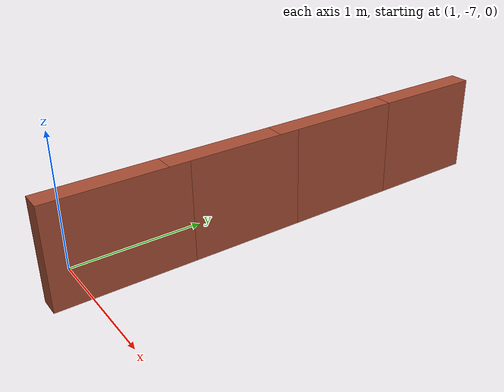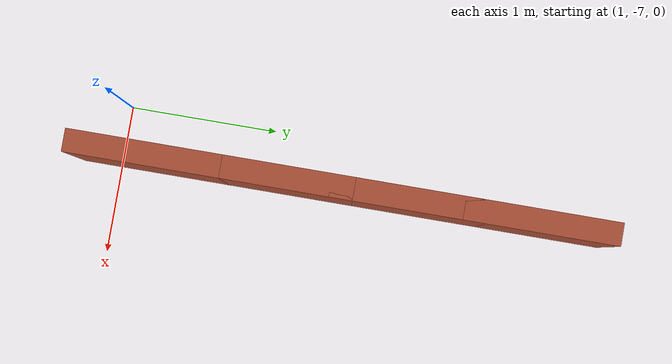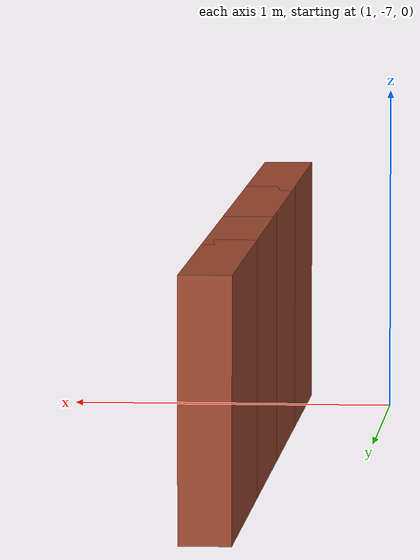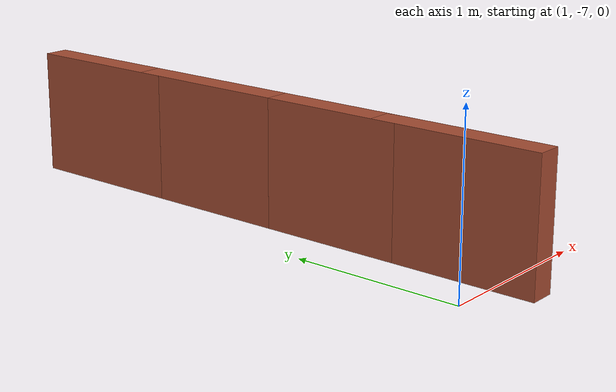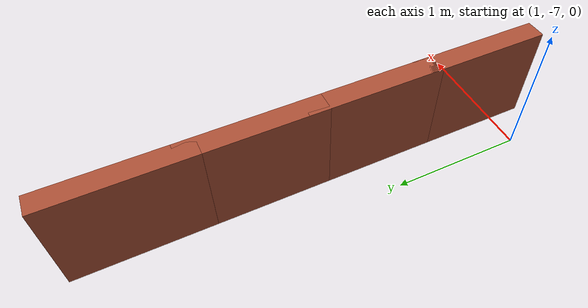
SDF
<?xml version='1.0'?>
<sdf version='1.7'>
  <model name='safety_wall_2'>
    <pose>0.7075 -3.6275 0 0 -0 0</pose>
    <link name='Wall_11'>
      <collision name='Wall_11_Collision'>
        <geometry>
          <box>
            <size>1 0.15 0.75</size>
          </box>
        </geometry>
        <pose>0 0 0.375 0 -0 0</pose>
      </collision>
      <visual name='Wall_11_Visual'>
        <pose>0 0 0.375 0 -0 0</pose>
        <geometry>
          <box>
            <size>1 0.15 0.75</size>
          </box>
        </geometry>
        <material>
          <script>
            <uri>file://media/materials/scripts/gazebo.material</uri>
            <name>Gazebo/Bricks</name>
          </script>
          <ambient>1 1 1 1</ambient>
        </material>
        <meta>
          <layer>0</layer>
        </meta>
      </visual>
      <pose>0.6325 -3.1275 0 0 -0 -1.5708</pose>
    </link>
    <link name='Wall_5'>
      <collision name='Wall_5_Collision'>
        <geometry>
          <box>
            <size>1 0.15 0.75</size>
          </box>
        </geometry>
        <pose>0 0 0.375 0 -0 0</pose>
      </collision>
      <visual name='Wall_5_Visual'>
        <pose>0 0 0.375 0 -0 0</pose>
        <geometry>
          <box>
            <size>1 0.15 0.75</size>
          </box>
        </geometry>
        <material>
          <script>
            <uri>file://media/materials/scripts/gazebo.material</uri>
            <name>Gazebo/Bricks</name>
          </script>
          <ambient>1 1 1 1</ambient>
        </material>
        <meta>
          <layer>0</layer>
        </meta>
      </visual>
      <pose>0.6325 -0.5775 0 0 -0 -1.5708</pose>
    </link>
    <link name='Wall_6'>
      <collision name='Wall_6_Collision'>
        <geometry>
          <box>
            <size>1 0.15 0.75</size>
          </box>
        </geometry>
        <pose>0 0 0.375 0 -0 0</pose>
      </collision>
      <visual name='Wall_6_Visual'>
        <pose>0 0 0.375 0 -0 0</pose>
        <geometry>
          <box>
            <size>1 0.15 0.75</size>
          </box>
        </geometry>
        <material>
          <script>
            <uri>file://media/materials/scripts/gazebo.material</uri>
            <name>Gazebo/Bricks</name>
          </script>
          <ambient>1 1 1 1</ambient>
        </material>
        <meta>
          <layer>0</layer>
        </meta>
      </visual>
      <pose>0.6325 -1.4275 0 0 -0 -1.5708</pose>
    </link>
    <link name='Wall_9'>
      <collision name='Wall_9_Collision'>
        <geometry>
          <box>
            <size>1 0.15 0.75</size>
          </box>
        </geometry>
        <pose>0 0 0.375 0 -0 0</pose>
      </collision>
      <visual name='Wall_9_Visual'>
        <pose>0 0 0.375 0 -0 0</pose>
        <geometry>
          <box>
            <size>1 0.15 0.75</size>
          </box>
        </geometry>
        <material>
          <script>
            <uri>file://media/materials/scripts/gazebo.material</uri>
            <name>Gazebo/Bricks</name>
          </script>
          <ambient>1 1 1 1</ambient>
        </material>
        <meta>
          <layer>0</layer>
        </meta>
      </visual>
      <pose>0.6325 -2.2775 0 0 -0 -1.5708</pose>
    </link>
    <static>1</static>
  </model>
</sdf>
